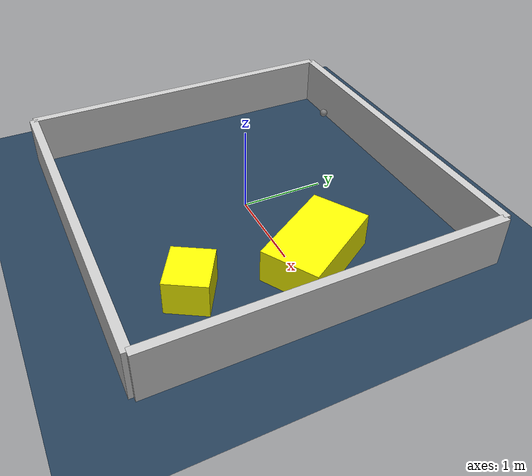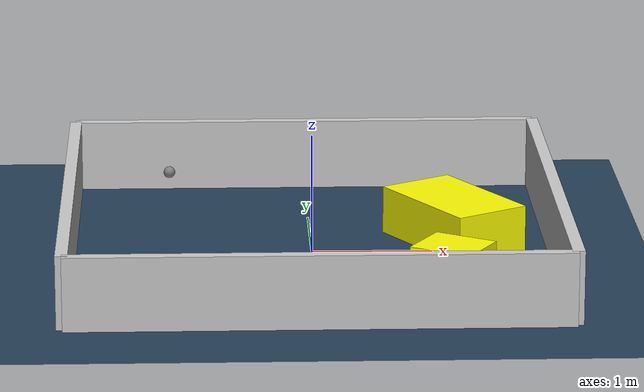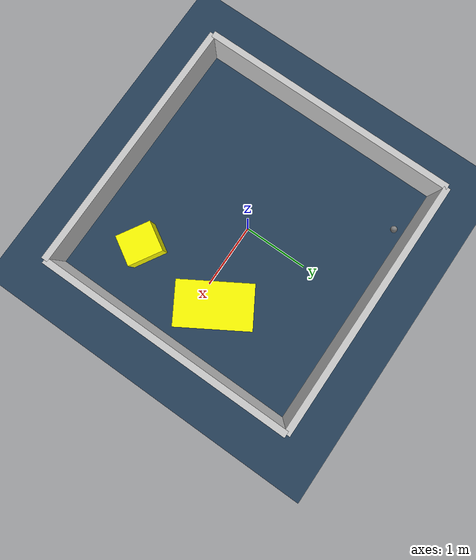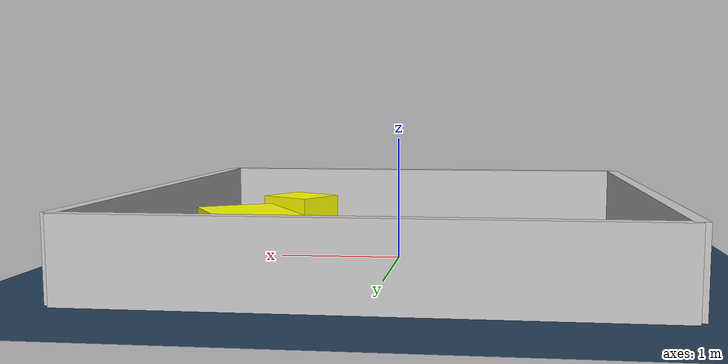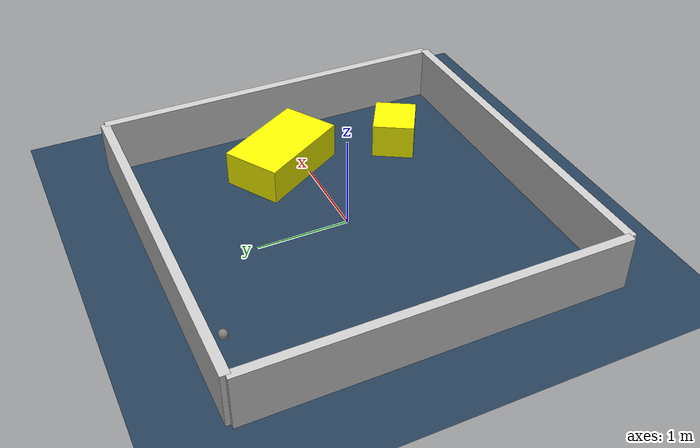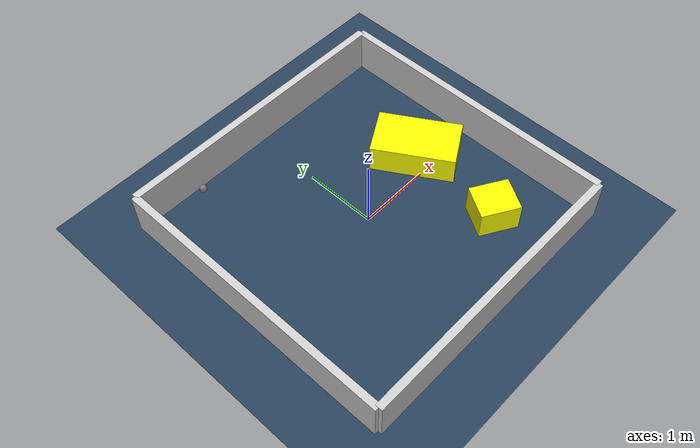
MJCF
<?xml version="1.0" ?>
<mujoco model="generated_environment">
  <option timestep="0.01" integrator="RK4" cone="elliptic"/>
  <default>
    <geom density="1"/>
  </default>
  <asset>
    <texture builtin="gradient" height="3072" rgb1="0.3 0.5 0.7" rgb2="0 0 0" type="skybox" width="512"/>
    <texture builtin="checker" height="300" mark="edge" markrgb="0.8 0.8 0.8" name="groundplane" rgb1="0.2 0.3 0.4" rgb2="0.1 0.2 0.3" type="2d" width="300"/>
    <material name="groundplane" reflectance="0.2" texrepeat="5 5" texture="groundplane" texuniform="true"/>
    <material name="robot" rgba="0.0 1.0 0.0 1"/>
  </asset>
  <worldbody>
    <light dir="0 0 -1" directional="true" pos="0 0 1.5"/>
    <geom condim="4" friction="1.0 0.005 0.001" material="groundplane" name="floor" size="0 0 0.05" type="plane"/>
    <body name="walls">
      <geom name="wall_1" condim="4" pos="-2.0 0.0 0.3" rgba="0.800000011920929 0.800000011920929 0.800000011920929 1.0" size="0.05 2.0 0.3" type="box"/>
      <geom name="wall_2" condim="4" pos="2.0 0.0 0.3" rgba="0.800000011920929 0.800000011920929 0.800000011920929 1.0" size="0.05 2.0 0.3" type="box"/>
      <geom name="wall_3" condim="4" pos="0.0 -2.0 0.3" rgba="0.800000011920929 0.800000011920929 0.800000011920929 1.0" size="2.0 0.05 0.3" type="box"/>
      <geom name="wall_4" condim="4" pos="0.0 2.0 0.3" rgba="0.800000011920929 0.800000011920929 0.800000011920929 1.0" size="2.0 0.05 0.3" type="box"/>
    </body>
    <body name="robot">
      <joint name="joint_x" type="slide" pos="0 0 0" axis="1 0 0"/>
      <joint name="joint_y" type="slide" pos="0 0 0" axis="0 1 0"/>
      <geom name="robot" type="sphere" pos="-1.1864530265248376 1.771158646364217 0.2" size="0.05" mass="5." friction="1.0 0.005 0.0001" condim="4"/>
      <site name="sensor_ball"/>
    </body>
    <body name="obstacle_1_movable">
      <geom name="obstacle_1_movable" condim="4" pos="1.1909358828805492 0.24901625027747354 0.2" euler="0 0 211.06576544294214" friction="1.0 0.005 0.001" rgba="1 1 0 1" size="0.33140710349091723 0.5613550103285023 0.2" type="box" mass="0.1"/>
      <joint type="free"/>
    </body>
    <body name="obstacle_2_movable">
      <geom name="obstacle_2_movable" condim="4" pos="1.0906174709786012 -1.119039646416328 0.2" euler="0 0 239.1866481936497" friction="1.0 0.005 0.001" rgba="1 1 0 1" size="0.2342957010014534 0.26656746427530925 0.2" type="box" mass="0.1"/>
      <joint type="free"/>
    </body>
  </worldbody>
  <actuator>
    <motor name="actuator_x" joint="joint_x" gear="1" ctrlrange="-1 1"/>
    <motor name="actuator_y" joint="joint_y" gear="1" ctrlrange="-1 1"/>
  </actuator>
</mujoco>
